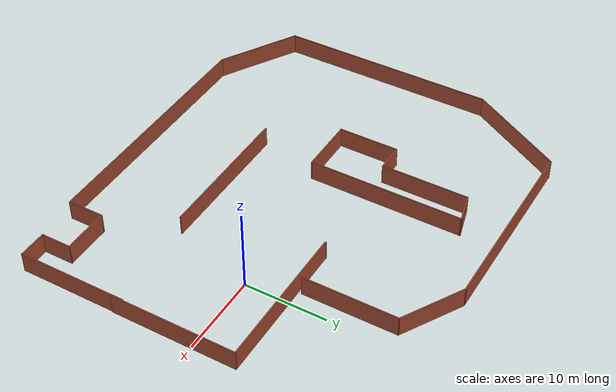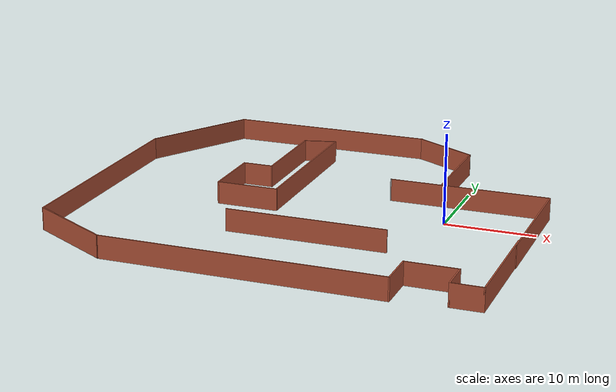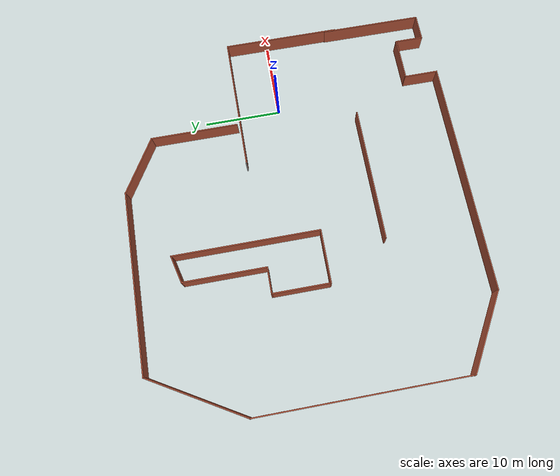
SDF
<?xml version='1.0'?>
<sdf version='1.6'>
  <model name='bigroom'>
    <pose frame=''>-14.3445 -0.45666 0 0 -0 0</pose>
    <link name='Wall_1'>
      <collision name='Wall_1_Collision'>
        <geometry>
          <box>
            <size>0.15 0.15 2.5</size>
          </box>
        </geometry>
        <pose frame=''>0 0 1.25 0 -0 0</pose>
      </collision>
      <visual name='Wall_1_Visual'>
        <pose frame=''>0 0 1.25 0 -0 0</pose>
        <geometry>
          <box>
            <size>0.15 0.15 2.5</size>
          </box>
        </geometry>
        <material>
          <script>
            <uri>file://media/materials/scripts/gazebo.material</uri>
            <name>Gazebo/Grey</name>
          </script>
          <ambient>1 1 1 1</ambient>
        </material>
        <meta>
          <layer>0</layer>
        </meta>
      </visual>
      <pose frame=''>6.67453 5.91666 0 0 -0 0</pose>
    </link>
    <link name='Wall_12'>
      <collision name='Wall_12_Collision'>
        <geometry>
          <box>
            <size>11.5 0.15 2.5</size>
          </box>
        </geometry>
        <pose frame=''>0 0 1.25 0 -0 0</pose>
      </collision>
      <visual name='Wall_12_Visual'>
        <pose frame=''>0 0 1.25 0 -0 0</pose>
        <geometry>
          <box>
            <size>11.5 0.15 2.5</size>
          </box>
        </geometry>
        <material>
          <script>
            <uri>file://media/materials/scripts/gazebo.material</uri>
            <name>Gazebo/Bricks</name>
          </script>
          <ambient>1 1 1 1</ambient>
        </material>
        <meta>
          <layer>0</layer>
        </meta>
      </visual>
      <pose frame=''>12.3976 12.0057 0 0 -0 -1.5708</pose>
    </link>
    <link name='Wall_14'>
      <collision name='Wall_14_Collision'>
        <geometry>
          <box>
            <size>19 0.15 2.5</size>
          </box>
        </geometry>
        <pose frame=''>0 0 1.25 0 -0 0</pose>
      </collision>
      <visual name='Wall_14_Visual'>
        <pose frame=''>0 0 1.25 0 -0 0</pose>
        <geometry>
          <box>
            <size>19 0.15 2.5</size>
          </box>
        </geometry>
        <material>
          <script>
            <uri>file://media/materials/scripts/gazebo.material</uri>
            <name>Gazebo/Bricks</name>
          </script>
          <ambient>1 1 1 1</ambient>
        </material>
        <meta>
          <layer>0</layer>
        </meta>
      </visual>
      <pose frame=''>-3.88463 7.50711 0 0 -0 -1.5708</pose>
    </link>
    <link name='Wall_15'>
      <collision name='Wall_15_Collision'>
        <geometry>
          <box>
            <size>7 0.15 2.5</size>
          </box>
        </geometry>
        <pose frame=''>0 0 1.25 0 -0 0</pose>
      </collision>
      <visual name='Wall_15_Visual'>
        <pose frame=''>0 0 1.25 0 -0 0</pose>
        <geometry>
          <box>
            <size>7 0.15 2.5</size>
          </box>
        </geometry>
        <material>
          <script>
            <uri>file://media/materials/scripts/gazebo.material</uri>
            <name>Gazebo/Bricks</name>
          </script>
          <ambient>1 1 1 1</ambient>
        </material>
        <meta>
          <layer>0</layer>
        </meta>
      </visual>
      <pose frame=''>-7.30963 -1.91789 0 0 -0 3.14159</pose>
    </link>
    <link name='Wall_16'>
      <collision name='Wall_16_Collision'>
        <geometry>
          <box>
            <size>7.5 0.15 2.5</size>
          </box>
        </geometry>
        <pose frame=''>0 0 1.25 0 -0 0</pose>
      </collision>
      <visual name='Wall_16_Visual'>
        <pose frame=''>0 0 1.25 0 -0 0</pose>
        <geometry>
          <box>
            <size>7.5 0.15 2.5</size>
          </box>
        </geometry>
        <material>
          <script>
            <uri>file://media/materials/scripts/gazebo.material</uri>
            <name>Gazebo/Bricks</name>
          </script>
          <ambient>1 1 1 1</ambient>
        </material>
        <meta>
          <layer>0</layer>
        </meta>
      </visual>
      <pose frame=''>-10.7346 1.75711 0 0 -0 1.5708</pose>
    </link>
    <link name='Wall_17'>
      <collision name='Wall_17_Collision'>
        <geometry>
          <box>
            <size>3.5 0.15 2.5</size>
          </box>
        </geometry>
        <pose frame=''>0 0 1.25 0 -0 0</pose>
      </collision>
      <visual name='Wall_17_Visual'>
        <pose frame=''>0 0 1.25 0 -0 0</pose>
        <geometry>
          <box>
            <size>3.5 0.15 2.5</size>
          </box>
        </geometry>
        <material>
          <script>
            <uri>file://media/materials/scripts/gazebo.material</uri>
            <name>Gazebo/Bricks</name>
          </script>
          <ambient>1 1 1 1</ambient>
        </material>
        <meta>
          <layer>0</layer>
        </meta>
      </visual>
      <pose frame=''>-9.05963 5.43211 0 0 -0 0</pose>
    </link>
    <link name='Wall_18'>
      <collision name='Wall_18_Collision'>
        <geometry>
          <box>
            <size>10.75 0.15 2.5</size>
          </box>
        </geometry>
        <pose frame=''>0 0 1.25 0 -0 0</pose>
      </collision>
      <visual name='Wall_18_Visual'>
        <pose frame=''>0 0 1.25 0 -0 0</pose>
        <geometry>
          <box>
            <size>10.75 0.15 2.5</size>
          </box>
        </geometry>
        <material>
          <script>
            <uri>file://media/materials/scripts/gazebo.material</uri>
            <name>Gazebo/Bricks</name>
          </script>
          <ambient>1 1 1 1</ambient>
        </material>
        <meta>
          <layer>0</layer>
        </meta>
      </visual>
      <pose frame=''>-7.38463 10.7321 0 0 -0 1.5708</pose>
    </link>
    <link name='Wall_19'>
      <collision name='Wall_19_Collision'>
        <geometry>
          <box>
            <size>3.76386 0.15 2.5</size>
          </box>
        </geometry>
        <pose frame=''>0 0 1.25 0 -0 0</pose>
      </collision>
      <visual name='Wall_19_Visual'>
        <pose frame=''>0 0 1.25 0 -0 0</pose>
        <geometry>
          <box>
            <size>3.76386 0.15 2.5</size>
          </box>
        </geometry>
        <material>
          <script>
            <uri>file://media/materials/scripts/gazebo.material</uri>
            <name>Gazebo/Bricks</name>
          </script>
          <ambient>1 1 1 1</ambient>
        </material>
        <meta>
          <layer>0</layer>
        </meta>
      </visual>
      <pose frame=''>-5.63463 16.4821 0 0 -0 0.25169</pose>
    </link>
    <link name='Wall_2'>
      <collision name='Wall_2_Collision'>
        <geometry>
          <box>
            <size>0.15 0.15 2.5</size>
          </box>
        </geometry>
        <pose frame=''>0 0 1.25 0 -0 0</pose>
      </collision>
      <visual name='Wall_2_Visual'>
        <pose frame=''>0 0 1.25 0 -0 0</pose>
        <geometry>
          <box>
            <size>0.15 0.15 2.5</size>
          </box>
        </geometry>
        <material>
          <script>
            <uri>file://media/materials/scripts/gazebo.material</uri>
            <name>Gazebo/Grey</name>
          </script>
          <ambient>1 1 1 1</ambient>
        </material>
        <meta>
          <layer>0</layer>
        </meta>
      </visual>
      <pose frame=''>6.67453 5.91666 0 0 -0 0</pose>
    </link>
    <link name='Wall_21'>
      <collision name='Wall_21_Collision'>
        <geometry>
          <box>
            <size>8.25 0.15 2.5</size>
          </box>
        </geometry>
        <pose frame=''>0 0 1.25 0 -0 0</pose>
      </collision>
      <visual name='Wall_21_Visual'>
        <pose frame=''>0 0 1.25 0 -0 0</pose>
        <geometry>
          <box>
            <size>8.25 0.15 2.5</size>
          </box>
        </geometry>
        <material>
          <script>
            <uri>file://media/materials/scripts/gazebo.material</uri>
            <name>Gazebo/Bricks</name>
          </script>
          <ambient>1 1 1 1</ambient>
        </material>
        <meta>
          <layer>0</layer>
        </meta>
      </visual>
      <pose frame=''>8.89022 19.7057 0 0 -0 2.61799</pose>
    </link>
    <link name='Wall_22'>
      <collision name='Wall_22_Collision'>
        <geometry>
          <box>
            <size>23.25 0.15 2.5</size>
          </box>
        </geometry>
        <pose frame=''>0 0 1.25 0 -0 0</pose>
      </collision>
      <visual name='Wall_22_Visual'>
        <pose frame=''>0 0 1.25 0 -0 0</pose>
        <geometry>
          <box>
            <size>23.25 0.15 2.5</size>
          </box>
        </geometry>
        <material>
          <script>
            <uri>file://media/materials/scripts/gazebo.material</uri>
            <name>Gazebo/Bricks</name>
          </script>
          <ambient>1 1 1 1</ambient>
        </material>
        <meta>
          <layer>0</layer>
        </meta>
      </visual>
      <pose frame=''>-6.16718 21.7307 0 0 -0 3.14159</pose>
    </link>
    <link name='Wall_23'>
      <collision name='Wall_23_Collision'>
        <geometry>
          <box>
            <size>13.5 0.15 2.5</size>
          </box>
        </geometry>
        <pose frame=''>0 0 1.25 0 -0 0</pose>
      </collision>
      <visual name='Wall_23_Visual'>
        <pose frame=''>0 0 1.25 0 -0 0</pose>
        <geometry>
          <box>
            <size>13.5 0.15 2.5</size>
          </box>
        </geometry>
        <material>
          <script>
            <uri>file://media/materials/scripts/gazebo.material</uri>
            <name>Gazebo/Bricks</name>
          </script>
          <ambient>1 1 1 1</ambient>
        </material>
        <meta>
          <layer>0</layer>
        </meta>
      </visual>
      <pose frame=''>-21.0547 15.95 0 0 -0 -2.0944</pose>
    </link>
    <link name='Wall_24'>
      <collision name='Wall_24_Collision'>
        <geometry>
          <box>
            <size>26.75 0.15 2.5</size>
          </box>
        </geometry>
        <pose frame=''>0 0 1.25 0 -0 0</pose>
      </collision>
      <visual name='Wall_24_Visual'>
        <pose frame=''>0 0 1.25 0 -0 0</pose>
        <geometry>
          <box>
            <size>26.75 0.15 2.5</size>
          </box>
        </geometry>
        <material>
          <script>
            <uri>file://media/materials/scripts/gazebo.material</uri>
            <name>Gazebo/Bricks</name>
          </script>
          <ambient>1 1 1 1</ambient>
        </material>
        <meta>
          <layer>0</layer>
        </meta>
      </visual>
      <pose frame=''>-24.3922 -3.13072 0 0 -0 -1.5708</pose>
    </link>
    <link name='Wall_25'>
      <collision name='Wall_25_Collision'>
        <geometry>
          <box>
            <size>10.75 0.15 2.5</size>
          </box>
        </geometry>
        <pose frame=''>0 0 1.25 0 -0 0</pose>
      </collision>
      <visual name='Wall_25_Visual'>
        <pose frame=''>0 0 1.25 0 -0 0</pose>
        <geometry>
          <box>
            <size>10.75 0.15 2.5</size>
          </box>
        </geometry>
        <material>
          <script>
            <uri>file://media/materials/scripts/gazebo.material</uri>
            <name>Gazebo/Bricks</name>
          </script>
          <ambient>1 1 1 1</ambient>
        </material>
        <meta>
          <layer>0</layer>
        </meta>
      </visual>
      <pose frame=''>-19.8022 -19.0807 0 0 -0 -0.523599</pose>
    </link>
    <link name='Wall_26'>
      <collision name='Wall_26_Collision'>
        <geometry>
          <box>
            <size>30.75 0.15 2.5</size>
          </box>
        </geometry>
        <pose frame=''>0 0 1.25 0 -0 0</pose>
      </collision>
      <visual name='Wall_26_Visual'>
        <pose frame=''>0 0 1.25 0 -0 0</pose>
        <geometry>
          <box>
            <size>30.75 0.15 2.5</size>
          </box>
        </geometry>
        <material>
          <script>
            <uri>file://media/materials/scripts/gazebo.material</uri>
            <name>Gazebo/Bricks</name>
          </script>
          <ambient>1 1 1 1</ambient>
        </material>
        <meta>
          <layer>0</layer>
        </meta>
      </visual>
      <pose frame=''>0.087691 -21.7307 0 0 -0 0</pose>
    </link>
    <link name='Wall_27'>
      <collision name='Wall_27_Collision'>
        <geometry>
          <box>
            <size>4.5 0.15 2.5</size>
          </box>
        </geometry>
        <pose frame=''>0 0 1.25 0 -0 0</pose>
      </collision>
      <visual name='Wall_27_Visual'>
        <pose frame=''>0 0 1.25 0 -0 0</pose>
        <geometry>
          <box>
            <size>4.5 0.15 2.5</size>
          </box>
        </geometry>
        <material>
          <script>
            <uri>file://media/materials/scripts/gazebo.material</uri>
            <name>Gazebo/Bricks</name>
          </script>
          <ambient>1 1 1 1</ambient>
        </material>
        <meta>
          <layer>0</layer>
        </meta>
      </visual>
      <pose frame=''>15.3877 -19.5557 0 0 -0 1.5708</pose>
    </link>
    <link name='Wall_28'>
      <collision name='Wall_28_Collision'>
        <geometry>
          <box>
            <size>5.75 0.15 2.5</size>
          </box>
        </geometry>
        <pose frame=''>0 0 1.25 0 -0 0</pose>
      </collision>
      <visual name='Wall_28_Visual'>
        <pose frame=''>0 0 1.25 0 -0 0</pose>
        <geometry>
          <box>
            <size>5.75 0.15 2.5</size>
          </box>
        </geometry>
        <material>
          <script>
            <uri>file://media/materials/scripts/gazebo.material</uri>
            <name>Gazebo/Bricks</name>
          </script>
          <ambient>1 1 1 1</ambient>
        </material>
        <meta>
          <layer>0</layer>
        </meta>
      </visual>
      <pose frame=''>18.1877 -17.3807 0 0 -0 0</pose>
    </link>
    <link name='Wall_29'>
      <collision name='Wall_29_Collision'>
        <geometry>
          <box>
            <size>3.75 0.15 2.5</size>
          </box>
        </geometry>
        <pose frame=''>0 0 1.25 0 -0 0</pose>
      </collision>
      <visual name='Wall_29_Visual'>
        <pose frame=''>0 0 1.25 0 -0 0</pose>
        <geometry>
          <box>
            <size>3.75 0.15 2.5</size>
          </box>
        </geometry>
        <material>
          <script>
            <uri>file://media/materials/scripts/gazebo.material</uri>
            <name>Gazebo/Bricks</name>
          </script>
          <ambient>1 1 1 1</ambient>
        </material>
        <meta>
          <layer>0</layer>
        </meta>
      </visual>
      <pose frame=''>20.9877 -19.1807 0 0 -0 -1.5708</pose>
    </link>
    <link name='Wall_30'>
      <collision name='Wall_30_Collision'>
        <geometry>
          <box>
            <size>3.5 0.15 2.5</size>
          </box>
        </geometry>
        <pose frame=''>0 0 1.25 0 -0 0</pose>
      </collision>
      <visual name='Wall_30_Visual'>
        <pose frame=''>0 0 1.25 0 -0 0</pose>
        <geometry>
          <box>
            <size>3.5 0.15 2.5</size>
          </box>
        </geometry>
        <material>
          <script>
            <uri>file://media/materials/scripts/gazebo.material</uri>
            <name>Gazebo/Bricks</name>
          </script>
          <ambient>1 1 1 1</ambient>
        </material>
        <meta>
          <layer>0</layer>
        </meta>
      </visual>
      <pose frame=''>22.6627 -20.9807 0 0 -0 0</pose>
    </link>
    <link name='Wall_31'>
      <collision name='Wall_31_Collision'>
        <geometry>
          <box>
            <size>13.25 0.15 2.5</size>
          </box>
        </geometry>
        <pose frame=''>0 0 1.25 0 -0 0</pose>
      </collision>
      <visual name='Wall_31_Visual'>
        <pose frame=''>0 0 1.25 0 -0 0</pose>
        <geometry>
          <box>
            <size>13.25 0.15 2.5</size>
          </box>
        </geometry>
        <material>
          <script>
            <uri>file://media/materials/scripts/gazebo.material</uri>
            <name>Gazebo/Bricks</name>
          </script>
          <ambient>1 1 1 1</ambient>
        </material>
        <meta>
          <layer>0</layer>
        </meta>
      </visual>
      <pose frame=''>24.3377 -14.4307 0 0 -0 1.5708</pose>
    </link>
    <link name='Wall_4'>
      <collision name='Wall_4_Collision'>
        <geometry>
          <box>
            <size>17.75 0.15 2.5</size>
          </box>
        </geometry>
        <pose frame=''>0 0 1.25 0 -0 0</pose>
      </collision>
      <visual name='Wall_4_Visual'>
        <pose frame=''>0 0 1.25 0 -0 0</pose>
        <geometry>
          <box>
            <size>17.75 0.15 2.5</size>
          </box>
        </geometry>
        <material>
          <script>
            <uri>file://media/materials/scripts/gazebo.material</uri>
            <name>Gazebo/Bricks</name>
          </script>
          <ambient>1 1 1 1</ambient>
        </material>
        <meta>
          <layer>0</layer>
        </meta>
      </visual>
      <pose frame=''>2.42628 -9.73119 0 0 -0 3.14159</pose>
    </link>
    <link name='Wall_6'>
      <collision name='Wall_6_Collision'>
        <geometry>
          <box>
            <size>15.25 0.15 2.5</size>
          </box>
        </geometry>
        <pose frame=''>0 0 1.25 0 -0 0</pose>
      </collision>
      <visual name='Wall_6_Visual'>
        <pose frame=''>0 0 1.25 0 -0 0</pose>
        <geometry>
          <box>
            <size>15.25 0.15 2.5</size>
          </box>
        </geometry>
        <material>
          <script>
            <uri>file://media/materials/scripts/gazebo.material</uri>
            <name>Gazebo/Bricks</name>
          </script>
          <ambient>1 1 1 1</ambient>
        </material>
        <meta>
          <layer>0</layer>
        </meta>
      </visual>
      <pose frame=''>24.4196 -1.68368 0 0 -0 -1.5708</pose>
    </link>
    <link name='Wall_8'>
      <collision name='Wall_8_Collision'>
        <geometry>
          <box>
            <size>17.75 0.15 2.5</size>
          </box>
        </geometry>
        <pose frame=''>0 0 1.25 0 -0 0</pose>
      </collision>
      <visual name='Wall_8_Visual'>
        <pose frame=''>0 0 1.25 0 -0 0</pose>
        <geometry>
          <box>
            <size>17.75 0.15 2.5</size>
          </box>
        </geometry>
        <material>
          <script>
            <uri>file://media/materials/scripts/gazebo.material</uri>
            <name>Gazebo/Bricks</name>
          </script>
          <ambient>1 1 1 1</ambient>
        </material>
        <meta>
          <layer>0</layer>
        </meta>
      </visual>
      <pose frame=''>15.6196 5.86632 0 0 -0 3.14159</pose>
    </link>
    <static>1</static>
  </model>
</sdf>
